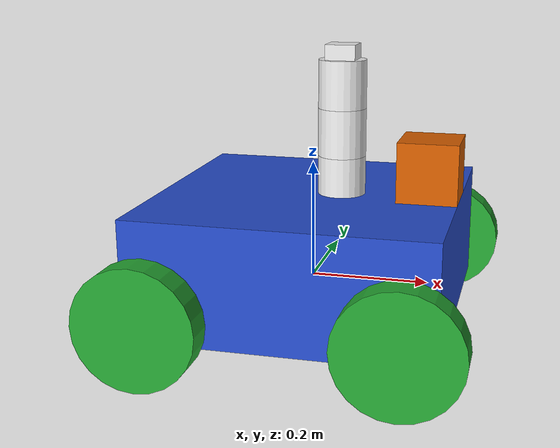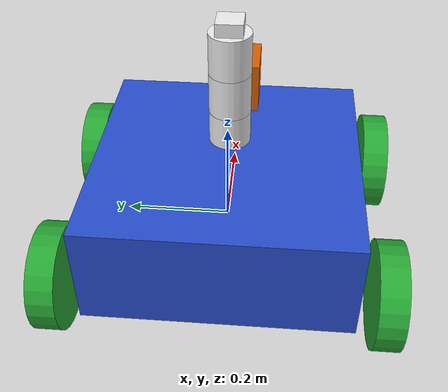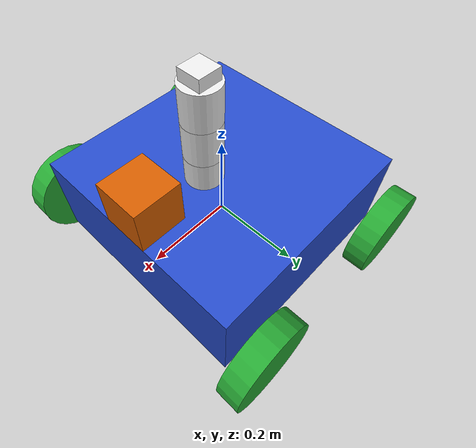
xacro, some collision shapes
<?xml version='1.0'?>

<robot name="robot" xmlns:xacro="http://www.ros.org/wiki/xacro">
	<xacro:property name="robot_name" value="robot" />
	<xacro:property name="robot_chassis_mass" value="15"/>
	<xacro:property name="robot_chassis_length" value="0.2"/>
	<xacro:property name="robot_chassis_radius" value="0.25"/>
	<xacro:property name="robot_caster_wheel_radius" value="0.05"/>
	<xacro:property name="robot_caster_wheel_radius_collision" value="0.0499"/>

	<xacro:property name="robot_wheel_mass" value="5"/>
	<xacro:property name="robot_wheel_length" value="0.05"/>
	<xacro:property name="robot_wheel_radius" value="0.1"/>

	<xacro:property name="camera_mass" value="0.1"/>
	<xacro:property name="hokoyu_mass" value="1e-5"/>

	<!-- Make Chassis of Bot -->
	<link name="chassis">
		<pose>0 0 0.1 0 0 0</pose>

		<inertial>
			<mass value="${robot_chassis_mass}"/>
      		<origin xyz="0.0 0 0" rpy=" 0 0 0"/>

      		<inertia
      			ixx="0.147116667" ixy="0" ixz="0"
      			iyy="0.334951167" iyz="0"
      			izz="0.3978345"
      		/>
		</inertial>

		<collision name="collision">
			<origin xyz="0 0 0.05" rpy=" 0 0 0"/>
			<geometry>
				<box size="0.5 0.5 0.2"/>
			</geometry>
		</collision>

		<visual name="chassis_visual">
			<origin xyz="0 0 0.05" rpy=" 0 0 0"/>
			<geometry>
				<box size="0.5 0.5 0.2"/>
			</geometry>

		</visual>

	</link>

	<!-- Right Wheel Back -->
	<link name="right_wheel_back">
		<inertial>
			<mass value="${robot_wheel_mass}"/>
			<origin xyz="0 0 0" rpy="0 1.5707 1.5707"/>
			<inertia
				ixx="0.1" ixy="0.0" ixz="0.0"
				iyy="0.1" iyz="0.0"
				izz="0.1"
			/>
		</inertial>

		<visual>
			<origin xyz="0 0 0" rpy="0 1.5707 1.5707"/>
			<geometry>
				<cylinder radius="${robot_wheel_radius}" length="${robot_wheel_length}"/>
			</geometry>
		</visual>

		<collision>
			<origin xyz="0 0 0" rpy="0 1.5707 1.5707"/>
			<geometry>
				<cylinder radius="${robot_wheel_radius}" length="${robot_wheel_length}"/>
			</geometry>
		</collision>

	</link>

	<!-- Right Wheel Front-->
	<link name="right_wheel_front">
		<inertial>
			<mass value="${robot_wheel_mass}"/>
			<origin xyz="0 0 0" rpy="0 1.5707 1.5707"/>
			<inertia
				ixx="0.1" ixy="0.0" ixz="0.0"
				iyy="0.1" iyz="0.0"
				izz="0.1"
			/>
		</inertial>

		<visual>
			<origin xyz="0 0 0" rpy="0 1.5707 1.5707"/>
			<geometry>
				<cylinder radius="${robot_wheel_radius}" length="${robot_wheel_length}"/>
			</geometry>
		</visual>

		<collision>
			<origin xyz="0 0 0" rpy="0 1.5707 1.5707"/>
			<geometry>
				<cylinder radius="${robot_wheel_radius}" length="${robot_wheel_length}"/>
			</geometry>
		</collision>

	</link>

	<!-- Left wheel Back-->
	<link name="left_wheel_back">
		<inertial>
			<mass value="${robot_wheel_mass}"/>
			<origin xyz="0 0 0" rpy="0 1.5707 1.5707"/>
			<inertia
				ixx="0.1" ixy="0.0" ixz="0.0"
				iyy="0.1" iyz="0.0"
				izz="0.1"
			/>
		</inertial>

		<visual>
			<origin xyz="0 0 0" rpy="0 1.5707 1.5707"/>
			<geometry>
				<cylinder radius="${robot_wheel_radius}" length="${robot_wheel_length}"/>
			</geometry>
		</visual>

		<collision>
			<origin xyz="0 0 0" rpy="0 1.5707 1.5707"/>
			<geometry>
				<cylinder radius="${robot_wheel_radius}" length="${robot_wheel_length}"/>
			</geometry>
		</collision>

	</link>

	<!-- Left wheel Front-->
	<link name="left_wheel_front">
		<inertial>
			<mass value="${robot_wheel_mass}"/>
			<origin xyz="0 0 0" rpy="0 1.5707 1.5707"/>
			<inertia
				ixx="0.1" ixy="0.0" ixz="0.0"
				iyy="0.1" iyz="0.0"
				izz="0.1"
			/>
		</inertial>

		<visual>
			<origin xyz="0 0 0" rpy="0 1.5707 1.5707"/>
			<geometry>
				<cylinder radius="${robot_wheel_radius}" length="${robot_wheel_length}"/>
			</geometry>
		</visual>

		<collision>
			<origin xyz="0 0 0" rpy="0 1.5707 1.5707"/>
			<geometry>
				<cylinder radius="${robot_wheel_radius}" length="${robot_wheel_length}"/>
			</geometry>
		</collision>

	</link>

	<!-- Hokuyo Lidar -->
	<link name="hokuyo">
		<inertial>
			<mass value="${hokoyu_mass}"/>
			<origin xyz="0 0 0" rpy="0 0 0"/>

			<inertia
		        ixx="1e-6" ixy="0.0" ixz="0.0"
		        iyy="1e-6" iyz="0.0"
		        izz="1e-6"
		      />
		</inertial>

		<visual>
			<origin xyz="0 0 0" rpy="0 0 0"/>
			<geometry>
				<mesh filename="package://assignment2/meshes/hokuyo.dae"/>
			</geometry>
		</visual>

		<collision>
			<origin xyz="0 0 0" rpy="0 0 0"/>
			<geometry>
				<box size="0.1 0.1 0.1"/>
			</geometry>
		</collision>
	</link>

	<link name="arm_base">
		<inertial>
			<mass value="0.1"/>
			<origin xyz="0 0 0" rpy="0 0 0" />
			<inertia ixx="0.0" ixy="0" ixz="0" iyy="0.0" iyz="0" izz="0.0"/>
		</inertial>
		<collision>
			<origin xyz="0 0 0" rpy="0 0 0"/>
			<geometry>
				<box size="0.1 0.1 0.1"/>
			</geometry>
		</collision>
		<visual>
			<origin xyz="0 0 0" rpy="0 0 0"/>
			<geometry>
				<box size="0.1 0.1 0.1"/>
			</geometry>
			<material name="white" />
		</visual>
	</link>

	<link name="arm_L1">
		<inertial>
			<mass value="0.0025"/>
			<origin xyz="0 0 0" rpy="0 0 0" />
			<inertia ixx="0.0" ixy="0" ixz="0" iyy="0.0" iyz="0" izz="0.0"/>
		</inertial>
		<collision>
			<origin xyz="0 0 0" rpy="0 0 0"/>
			<geometry>
				<cylinder radius="0.04" length="0.08"/>
			</geometry>
		</collision>
		<visual>
			<origin xyz="0 0 0" rpy="0 0 0"/>
			<geometry>
				<cylinder radius="0.04" length="0.08"/>
			</geometry>
			<material name="white" />
		</visual>
	</link>

	<link name="arm_L2">
		<inertial>
			<mass value="0.0025"/>
			<origin xyz="0 0 0" rpy="0 0 0" />
			<inertia ixx="0.0" ixy="0" ixz="0" iyy="0.0" iyz="0" izz="0.0"/>
		</inertial>
		<collision>
			<origin xyz="0 0 0.04" rpy="0 0 0"/>
			<geometry>
				<cylinder radius="0.04" length="0.08"/>
			</geometry>
		</collision>
		<visual>
			<origin xyz="0 0 0.04" rpy="0 0 0"/>
			<geometry>
				<cylinder radius="0.04" length="0.08"/>
			</geometry>
			<material name="white" />
		</visual>
  	</link>

	<link name="arm_L3">
		<inertial>
			<mass value="0.0025"/>
			<origin xyz="0 0 0" rpy="0 0 0" />
			<inertia ixx="0.0" ixy="0" ixz="0" iyy="0.0" iyz="0" izz="0.0"/>
		</inertial>
		<collision>
			<origin xyz="0 0 0.04" rpy="0 0 0"/>
			<geometry>
				<cylinder radius="0.04" length="0.08"/>
			</geometry>
		</collision>
		<visual>
			<origin xyz="0 0 0.04" rpy="0 0 0"/>
			<geometry>
				<cylinder radius="0.04" length="0.08"/>
			</geometry>
			<material name="white" />
		</visual>
	</link>
	<!-- Camera -->

	  <!-- Camera -->
	<link name="camera">
		<collision>
			<origin xyz="0 0 0" rpy="0 0 0"/>
			<geometry>
				<box size="0.05 0.05 0.05"/>
			</geometry>
		</collision>

		<visual>
			<origin xyz="0 0 0" rpy="0 0 0"/>
			<geometry>
				<box size="0.05 0.05 0.05"/>
			</geometry>
			<material name="white"/>
		</visual>

		<inertial>
			<mass value="${camera_mass}" />
			<origin xyz="0 0 0" rpy="0 0 0"/>
			<inertia ixx="0" ixy="0" ixz="0" iyy="0" iyz="0" izz="0" />
		</inertial>
	</link>

	<!-- Project center to the ground -->
	<link name="robot_footprint"></link>

	<!-- Define Joints -->

	<!-- Right Wheel Joint Back-->
	<joint type="continuous" name="right_wheel_hinge_back">
	    <origin xyz="-0.2 -0.30 0" rpy="0 0 0" />
	    <parent link="chassis"/>
	    <child link="right_wheel_back" />
	    <axis xyz="0 1 0" rpy="0 0 0" />
	    <limit effort="10000" velocity="1000" />
	    <dynamics damping="1.0" friction="1.0" />
	</joint>

	<!-- Right Wheel Joint Front-->
	<joint type="continuous" name="right_wheel_hinge_front">
	    <origin xyz="0.2 -0.30 0" rpy="0 0 0" />
	    <parent link="chassis"/>
	    <child link="right_wheel_front" />
	    <axis xyz="0 1 0" rpy="0 0 0" />
	    <limit effort="10000" velocity="1000" />
	    <dynamics damping="1.0" friction="1.0" />
	</joint>

	<!-- Left Wheel Joint Back-->
	<joint type="continuous" name="left_wheel_hinge_back">
	    <origin xyz="-0.2 0.30 0" rpy="0 0 0" />
	    <parent link="chassis"/>
	    <child link="left_wheel_back" />
	    <axis xyz="0 1 0" rpy="0 0 0" />
	    <limit effort="10000" velocity="1000" />
	    <dynamics damping="1.0" friction="1.0" />
	</joint>

	<!-- Left Wheel Joint Front-->
	<joint type="continuous" name="left_wheel_hinge_front">
	    <origin xyz="0.2 0.30 0" rpy="0 0 0" />
	    <parent link="chassis"/>
	    <child link="left_wheel_front" />
	    <axis xyz="0 1 0" rpy="0 0 0" />
	    <limit effort="10000" velocity="1000" />
	    <dynamics damping="1.0" friction="1.0" />
	</joint>

	<joint name="j_from_arm_to_base" type="fixed">
		<origin rpy="0 0 0" xyz="0.05 0 0.085"/>
		<parent link="chassis"/>
		<child link="arm_base"/>
	</joint>

	<joint name="arm_J1" type="revolute">
		<axis xyz="0 0 1"/>
		<limit effort="1000.0" lower="-3.14" upper="3.14" velocity="0.2"/>
		<origin rpy="0 0 0" xyz="0 0 0.09"/>
		<parent link="arm_base"/>
		<child link="arm_L1"/>
	</joint>

	<joint name="arm_J2" type="revolute">
		<axis xyz="1 0 0"/>
		<limit effort="1000.0" lower="-1.8" upper="1.8" velocity="0.2"/>
		<origin rpy="0 0 0" xyz="0 0 0.04"/>
		<parent link="arm_L1"/>
		<child link="arm_L2"/>
	</joint>

	<joint name="arm_J3" type="revolute">
		<axis xyz="1 0 0"/>
		<limit effort="1000.0" lower="-1.8" upper="1.8" velocity="0.2"/>
		<origin rpy="0 0 0" xyz="0 0 0.08"/>
		<parent link="arm_L2"/>
		<child link="arm_L3"/>
	</joint>

	<!-- Camera Joint -->
	<joint name="camera_joint" type="fixed">
		<axis xyz="0 0 0" />
		<origin xyz="0 0.0 0.08" rpy="0 0 0"/>
		<parent link="arm_L3"/>
		<child link="camera"/>
	  </joint>

	<!-- Hokoyu Joint -->
	<joint name="hokuyo_joint" type="fixed">
	    <origin xyz="0.2 0 0.2" rpy="0 0 0" />
	    <parent link="chassis"/>
	    <child link="hokuyo" />
	    <axis xyz="0 1 0"/>
	</joint>

	<joint name="robot_footprint_joint" type="fixed">
		<origin xyz="0 0 0" rpy="0 0 0" />
		<parent link="robot_footprint"/>
		<child link="chassis" />
	</joint>

	<!-- Color of bot -->
	<gazebo reference="left_wheel_front">
		<material>Gazebo/Green</material>
		<kp>1000000.0</kp> <!-- kp and kd for rubber -->
		<kd>100.0</kd>
		<mu1>1.0</mu1>
		<mu2>1.0</mu2>
		<maxVel>1.0</maxVel>
		<minDepth>0.00</minDepth>
	</gazebo>

	<gazebo reference="left_wheel_back">
		<material>Gazebo/Green</material>
		<kp>1000000.0</kp> <!-- kp and kd for rubber -->
		<kd>100.0</kd>
		<mu1>1.0</mu1>
		<mu2>1.0</mu2>
		<maxVel>1.0</maxVel>
		<minDepth>0.00</minDepth>
	</gazebo>

	<gazebo reference="right_wheel_front">
		<material>Gazebo/Green</material>
		<kp>1000000.0</kp> <!-- kp and kd for rubber -->
		<kd>100.0</kd>
		<mu1>1.0</mu1>
		<mu2>1.0</mu2>
		<maxVel>1.0</maxVel>
		<minDepth>0.00</minDepth>
	</gazebo>
	<gazebo reference="right_wheel_back">
		<material>Gazebo/Green</material>
		<kp>1000000.0</kp> <!-- kp and kd for rubber -->
		<kd>100.0</kd>
		<mu1>1.0</mu1>
		<mu2>1.0</mu2>
		<maxVel>1.0</maxVel>
		<minDepth>0.00</minDepth>
	</gazebo>
	<gazebo reference="arm_base">
		<material>Gazebo/white</material>
	</gazebo>
	<gazebo reference="arm_L1">
		<material>Gazebo/white</material>
	</gazebo>
	<gazebo reference="arm_L2">
		<material>Gazebo/white</material>
	</gazebo>
	<gazebo reference="arm_L3">
		<material>Gazebo/white</material>
	</gazebo>

	<gazebo reference="arm_J2">
		<provideFeedback>true</provideFeedback>
	</gazebo>
	<gazebo reference="camera">
		<material>Gazebo/Red</material>
	</gazebo>

	<gazebo reference="chassis">
		<material>Gazebo/Blue</material>
	</gazebo>

	<!-- Motor, Camera and Lidar Simulation -->
	<xacro:include filename="$(find assignment2)/urdf/robot.gazebo" />

	<transmission name="arm_J1_trans">
		<type>transmission_interface/SimpleTransmission</type>
		<joint name="arm_J1">
			<hardwareInterface>hardware_interface/EffortJointInterface</hardwareInterface>
		</joint>
		<actuator name="motor1">
			<hardwareInterface>hardware_interface/EffortJointInterface</hardwareInterface>
			<mechanicalInterface>1</mechanicalInterface>
		</actuator>
	</transmission>

	<transmission name="arm_J2_trans">
		<type>transmission_interface/SimpleTransmission</type>
		<joint name="arm_J2">
			<hardwareInterface>hardware_interface/EffortJointInterface</hardwareInterface>
		</joint>
		<actuator name="motor2">
			<hardwareInterface>hardware_interface/EffortJointInterface</hardwareInterface>
			<mechanicalInterface>1</mechanicalInterface>
		</actuator>
	</transmission>

	<transmission name="arm_J3_trans">
		<type>transmission_interface/SimpleTransmission</type>
		<joint name="arm_J3">
			<hardwareInterface>hardware_interface/EffortJointInterface</hardwareInterface>
		</joint>
		<actuator name="motor3">
			<hardwareInterface>hardware_interface/EffortJointInterface</hardwareInterface>
			<mechanicalInterface>1</mechanicalInterface>
		</actuator>
	</transmission>

</robot>
